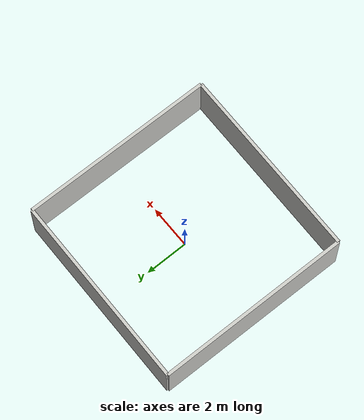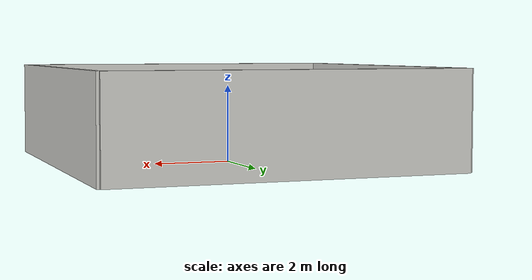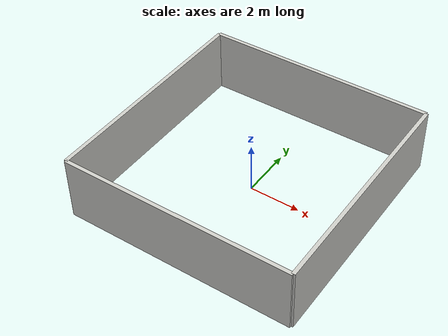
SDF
<?xml version='1.0'?>
<sdf version='1.7'>
  <model name='walls'>
    <link name='Wall_0'>
      <pose>-4.5 0 1.25 0 0 -1.5708</pose>
      <collision name='Wall_0_Collision'>
        <geometry>
          <box>
            <size>9.0 0.15 2.5</size>
          </box>
        </geometry>
      </collision>
      <visual name='Wall_0_Visual'>
        <geometry>
          <box>
            <size>9.0 0.15 2.5</size>
          </box>
        </geometry>
        <material>
          <script>
            <uri>file://media/materials/scripts/gazebo.material</uri>
            <name>Gazebo/CeilingTiled</name>
          </script>
          <ambient>1 1 1 1</ambient>
        </material>
        <meta>
          <layer>0</layer>
        </meta>
      </visual>
    </link>
    <link name='Wall_1'>
      <pose>4.5 0 1.25 0 0 -1.5708</pose>
      <collision name='Wall_1_Collision'>
        <geometry>
          <box>
            <size>9.0 0.15 2.5</size>
          </box>
        </geometry>
      </collision>
      <visual name='Wall_1_Visual'>
        <geometry>
          <box>
            <size>9.0 0.15 2.5</size>
          </box>
        </geometry>
        <material>
          <script>
            <uri>file://media/materials/scripts/gazebo.material</uri>
            <name>Gazebo/CeilingTiled</name>
          </script>
          <ambient>1 1 1 1</ambient>
        </material>
        <meta>
          <layer>0</layer>
        </meta>
      </visual>
    </link>
    <link name='Wall_2'>
      <pose>0 -4.5 1.25 0 0 0</pose>
      <collision name='Wall_2_Collision'>
        <geometry>
          <box>
            <size>9.0 0.15 2.5</size>
          </box>
        </geometry>
      </collision>
      <visual name='Wall_2_Visual'>
        <geometry>
          <box>
            <size>9.0 0.15 2.5</size>
          </box>
        </geometry>
        <material>
          <script>
            <uri>file://media/materials/scripts/gazebo.material</uri>
            <name>Gazebo/CeilingTiled</name>
          </script>
          <ambient>1 1 1 1</ambient>
        </material>
        <meta>
          <layer>0</layer>
        </meta>
      </visual>
    </link>
    <link name='Wall_3'>
      <pose>0 4.5 1.25 0 0 0</pose>
      <collision name='Wall_3_Collision'>
        <geometry>
          <box>
            <size>9.0 0.15 2.5</size>
          </box>
        </geometry>
      </collision>
      <visual name='Wall_3_Visual'>
        <geometry>
          <box>
            <size>9.0 0.15 2.5</size>
          </box>
        </geometry>
        <material>
          <script>
            <uri>file://media/materials/scripts/gazebo.material</uri>
            <name>Gazebo/CeilingTiled</name>
          </script>
          <ambient>1 1 1 1</ambient>
        </material>
        <meta>
          <layer>0</layer>
        </meta>
      </visual>
    </link>
    <static>1</static>
  </model>
</sdf>
